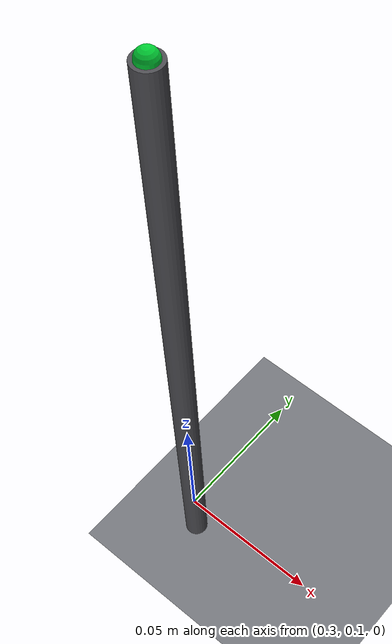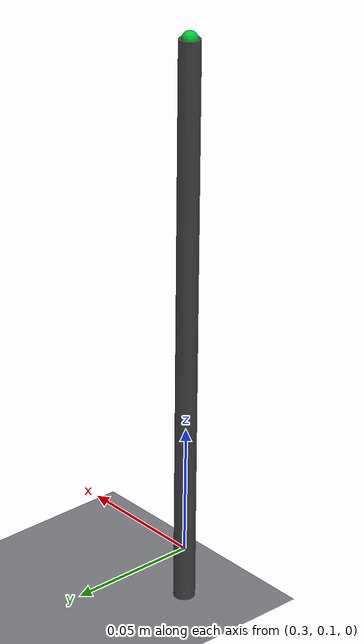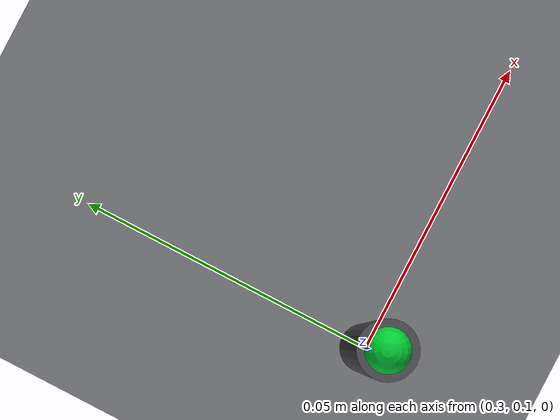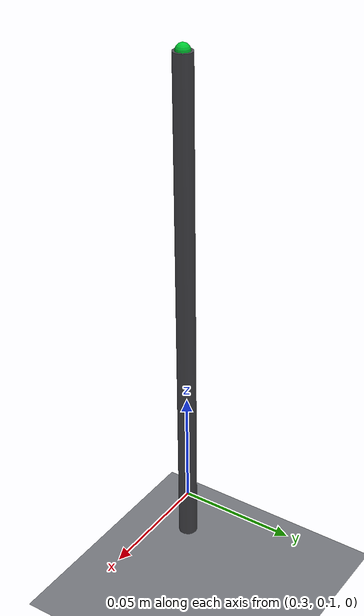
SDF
<?xml version="1.0"?>
<sdf version="1.6">
  <world name="default">
    <physics name="1ms" type="ignored">
      <max_step_size>0.001</max_step_size>
      <real_time_factor>1.0</real_time_factor>
    </physics>

    <plugin filename="gz-sim-physics-system" name="gz::sim::systems::Physics"/>
    <plugin filename="gz-sim-user-commands-system" name="gz::sim::systems::UserCommands"/>
    <plugin filename="gz-sim-scene-broadcaster-system" name="gz::sim::systems::SceneBroadcaster"/>
    <plugin filename="gz-sim-sensors-system" name="gz::sim::systems::Sensors">
      <render_engine>ogre2</render_engine>
    </plugin>

    <scene>
      <ambient>0.85 0.85 0.85 1</ambient>
      <background>0.75 0.78 0.80 1</background>
      <shadows>false</shadows>
      <grid>false</grid>
    </scene>

    <gui fullscreen="0">

      <!-- 3D scene -->
      <plugin filename="MinimalScene" name="3D View">
        <gz-gui>
          <title>3D View</title>
          <property type="bool" key="showTitleBar">false</property>
          <property type="string" key="state">docked</property>
        </gz-gui>

        <engine>ogre2</engine>
        <scene>scene</scene>
        <ambient_light>0.4 0.4 0.4</ambient_light>
        <background_color>0.8 0.8 0.8</background_color>
        <camera_pose>0 -0.8 0.6 0 0.5 1.57</camera_pose>
        <camera_clip>
          <near>0.25</near>
          <far>25000</far>
        </camera_clip>
      </plugin>

      <!-- Plugins that add functionality to the scene -->
      <plugin filename="EntityContextMenuPlugin" name="Entity context menu">
        <gz-gui>
          <property key="state" type="string">floating</property>
          <property key="width" type="double">5</property>
          <property key="height" type="double">5</property>
          <property key="showTitleBar" type="bool">false</property>
        </gz-gui>
      </plugin>
      <plugin filename="GzSceneManager" name="Scene Manager">
        <gz-gui>
          <property key="resizable" type="bool">false</property>
          <property key="width" type="double">5</property>
          <property key="height" type="double">5</property>
          <property key="state" type="string">floating</property>
          <property key="showTitleBar" type="bool">false</property>
        </gz-gui>
      </plugin>
      <plugin filename="InteractiveViewControl" name="Interactive view control">
        <gz-gui>
          <property key="resizable" type="bool">false</property>
          <property key="width" type="double">5</property>
          <property key="height" type="double">5</property>
          <property key="state" type="string">floating</property>
          <property key="showTitleBar" type="bool">false</property>
        </gz-gui>
      </plugin>
      <plugin filename="CameraTracking" name="Camera Tracking">
        <gz-gui>
          <property key="resizable" type="bool">false</property>
          <property key="width" type="double">5</property>
          <property key="height" type="double">5</property>
          <property key="state" type="string">floating</property>
          <property key="showTitleBar" type="bool">false</property>
        </gz-gui>
      </plugin>
      <plugin filename="MarkerManager" name="Marker manager">
        <gz-gui>
          <property key="resizable" type="bool">false</property>
          <property key="width" type="double">5</property>
          <property key="height" type="double">5</property>
          <property key="state" type="string">floating</property>
          <property key="showTitleBar" type="bool">false</property>
        </gz-gui>
      </plugin>
      <plugin filename="SelectEntities" name="Select Entities">
        <gz-gui>
          <anchors target="Select entities">
            <line own="right" target="right"/>
            <line own="top" target="top"/>
          </anchors>
          <property key="resizable" type="bool">false</property>
          <property key="width" type="double">5</property>
          <property key="height" type="double">5</property>
          <property key="state" type="string">floating</property>
          <property key="showTitleBar" type="bool">false</property>
        </gz-gui>
      </plugin>
      <plugin filename="VisualizationCapabilities" name="Visualization Capabilities">
        <gz-gui>
          <property key="resizable" type="bool">false</property>
          <property key="width" type="double">5</property>
          <property key="height" type="double">5</property>
          <property key="state" type="string">floating</property>
          <property key="showTitleBar" type="bool">false</property>
        </gz-gui>
      </plugin>

      <plugin filename="Spawn" name="Spawn Entities">
        <gz-gui>
          <anchors target="Select entities">
            <line own="right" target="right"/>
            <line own="top" target="top"/>
          </anchors>
          <property key="resizable" type="bool">false</property>
          <property key="width" type="double">5</property>
          <property key="height" type="double">5</property>
          <property key="state" type="string">floating</property>
          <property key="showTitleBar" type="bool">false</property>
        </gz-gui>
      </plugin>

      <!-- World control -->
      <plugin filename="WorldControl" name="World control">
        <gz-gui>
          <title>World control</title>
          <property type="bool" key="showTitleBar">false</property>
          <property type="bool" key="resizable">false</property>
          <property type="double" key="height">72</property>
          <property type="double" key="width">180</property>
          <property type="double" key="z">1</property>

          <property type="string" key="state">floating</property>
          <anchors target="3D View">
            <line own="left" target="left"/>
            <line own="bottom" target="bottom"/>
          </anchors>
        </gz-gui>

        <play_pause>true</play_pause>
        <step>true</step>
        <start_paused>false</start_paused>
        <use_event>true</use_event>

      </plugin>

      <!-- World statistics -->
      <plugin filename="WorldStats" name="World stats">
        <gz-gui>
          <title>World stats</title>
          <property type="bool" key="showTitleBar">false</property>
          <property type="bool" key="resizable">false</property>
          <property type="double" key="height">110</property>
          <property type="double" key="width">290</property>
          <property type="double" key="z">1</property>

          <property type="string" key="state">floating</property>
          <anchors target="3D View">
            <line own="right" target="right"/>
            <line own="bottom" target="bottom"/>
          </anchors>
        </gz-gui>

        <sim_time>true</sim_time>
        <real_time>true</real_time>
        <real_time_factor>true</real_time_factor>
        <iterations>true</iterations>
      </plugin>

      <!-- Insert simple shapes -->
      <plugin filename="Shapes" name="Shapes">
        <gz-gui>
          <property key="resizable" type="bool">false</property>
          <property key="x" type="double">0</property>
          <property key="y" type="double">0</property>
          <property key="width" type="double">250</property>
          <property key="height" type="double">50</property>
          <property key="state" type="string">floating</property>
          <property key="showTitleBar" type="bool">false</property>
          <property key="cardBackground" type="string">#666666</property>
        </gz-gui>
      </plugin>

      <!-- Insert lights -->
      <plugin filename="Lights" name="Lights">
        <gz-gui>
          <property key="resizable" type="bool">false</property>
          <property key="x" type="double">250</property>
          <property key="y" type="double">0</property>
          <property key="width" type="double">150</property>
          <property key="height" type="double">50</property>
          <property key="state" type="string">floating</property>
          <property key="showTitleBar" type="bool">false</property>
          <property key="cardBackground" type="string">#666666</property>
        </gz-gui>
      </plugin>

      <!-- Translate / rotate -->
      <plugin filename="TransformControl" name="Transform control">
        <gz-gui>
          <property key="resizable" type="bool">false</property>
          <property key="x" type="double">0</property>
          <property key="y" type="double">50</property>
          <property key="width" type="double">250</property>
          <property key="height" type="double">50</property>
          <property key="state" type="string">floating</property>
          <property key="showTitleBar" type="bool">false</property>
          <property key="cardBackground" type="string">#777777</property>
        </gz-gui>
      </plugin>

      <!-- Screenshot -->
      <plugin filename="Screenshot" name="Screenshot">
        <gz-gui>
          <property key="resizable" type="bool">false</property>
          <property key="x" type="double">250</property>
          <property key="y" type="double">50</property>
          <property key="width" type="double">50</property>
          <property key="height" type="double">50</property>
          <property key="state" type="string">floating</property>
          <property key="showTitleBar" type="bool">false</property>
          <property key="cardBackground" type="string">#777777</property>
        </gz-gui>
      </plugin>

      <!-- Video recorder -->
      <plugin filename="VideoRecorder" name="VideoRecorder">
        <gz-gui>
          <property key="resizable" type="bool">false</property>
          <property key="x" type="double">300</property>
          <property key="y" type="double">50</property>
          <property key="width" type="double">50</property>
          <property key="height" type="double">50</property>
          <property key="state" type="string">floating</property>
          <property key="showTitleBar" type="bool">false</property>
          <property key="cardBackground" type="string">#777777</property>
        </gz-gui>

        <record_video>
          <use_sim_time>true</use_sim_time>
          <lockstep>true</lockstep>
          <bitrate>4000000</bitrate>
        </record_video>
      </plugin>

      <!-- Inspector -->
      <plugin filename="ComponentInspector" name="Component inspector">
        <gz-gui>
          <property type="string" key="state">docked_collapsed</property>
        </gz-gui>
      </plugin>

      <!-- Entity tree -->
      <plugin filename="EntityTree" name="Entity tree">
        <gz-gui>
          <property type="string" key="state">docked_collapsed</property>
        </gz-gui>
      </plugin>

      <!-- View angle -->
      <plugin filename="ViewAngle" name="View angle">
        <gz-gui>
          <property type="string" key="state">docked_collapsed</property>
        </gz-gui>
      </plugin>

    </gui>

    <gravity>0 0 0</gravity>

    <light type="directional" name="key">
      <cast_shadows>false</cast_shadows>
      <pose>0 0 3 0 0 0</pose>
      <diffuse>0.6 0.6 0.6 1</diffuse>
      <specular>0.05 0.05 0.05 1</specular>
      <direction>-0.4 0.2 -0.9</direction>
    </light>
    <light type="directional" name="fill_a">
      <cast_shadows>false</cast_shadows>
      <pose>0 0 2 0 0 0</pose>
      <diffuse>0.35 0.35 0.35 1</diffuse>
      <specular>0 0 0 1</specular>
      <direction>0.8 -0.3 -0.5</direction>
    </light>
    <light type="directional" name="fill_b">
      <cast_shadows>false</cast_shadows>
      <pose>0 0 2 0 0 0</pose>
      <diffuse>0.35 0.35 0.35 1</diffuse>
      <specular>0 0 0 1</specular>
      <direction>0.1 0.9 -0.4</direction>
    </light>

    <model name="ground_plane">
      <static>true</static>
      <pose>0 0 -0.02 0 0 0</pose>
      <link name="link">
        <collision name="collision">
          <geometry><plane><normal>0 0 1</normal><size>10 10</size></plane></geometry>
        </collision>
        <visual name="visual">
          <geometry><plane><normal>0 0 1</normal><size>10 10</size></plane></geometry>
          <material>
            <ambient>0.35 0.36 0.38 1</ambient>
            <diffuse>0.45 0.46 0.48 1</diffuse>
            <specular>0 0 0 1</specular>
          </material>
        </visual>
      </link>
    </model>

    <model name="tcp_reference">
      <static>true</static>
      <pose>0.30 0.10 0.20 0 0 0</pose>
      <link name="tip">
        <visual name="ball">
          <geometry><sphere><radius>0.003</radius></sphere></geometry>
          <material>
            <ambient>0 0.8 0.2 1</ambient>
            <diffuse>0 0.8 0.2 1</diffuse>
            <specular>0 0 0 1</specular>
          </material>
        </visual>
        <visual name="post">
          <pose>0 0 -0.11 0 0 0</pose>
          <geometry><cylinder><radius>0.004</radius><length>0.22</length></cylinder></geometry>
          <material>
            <ambient>0.2 0.2 0.22 1</ambient>
            <diffuse>0.3 0.3 0.32 1</diffuse>
            <specular>0 0 0 1</specular>
          </material>
        </visual>
        <collision name="post_col">
          <pose>0 0 -0.11 0 0 0</pose>
          <geometry><cylinder><radius>0.004</radius><length>0.22</length></cylinder></geometry>
        </collision>
      </link>
    </model>

  </world>
</sdf>
